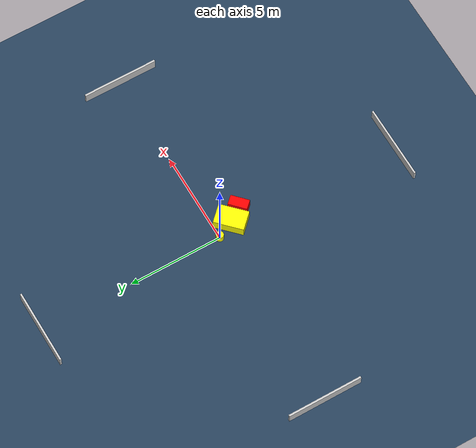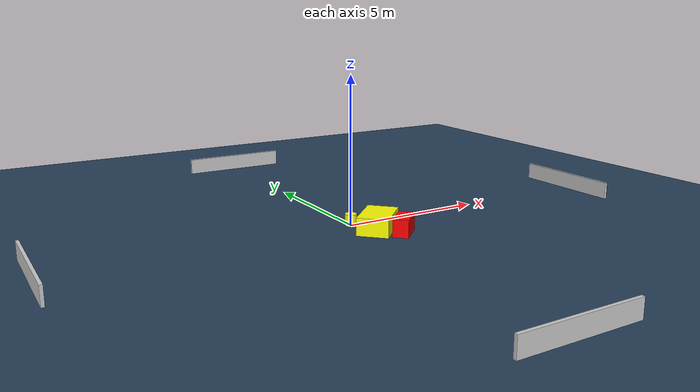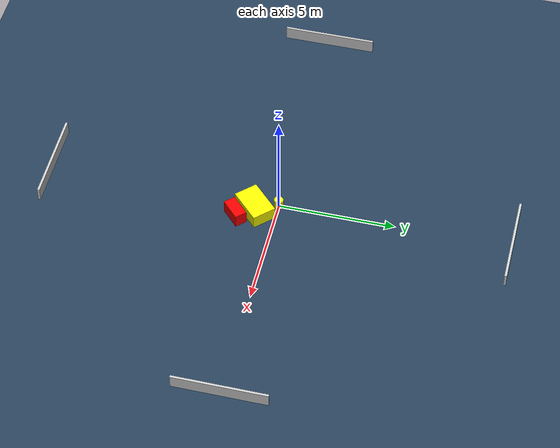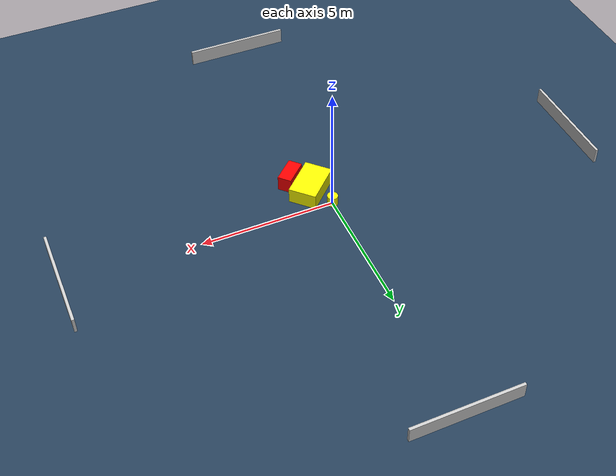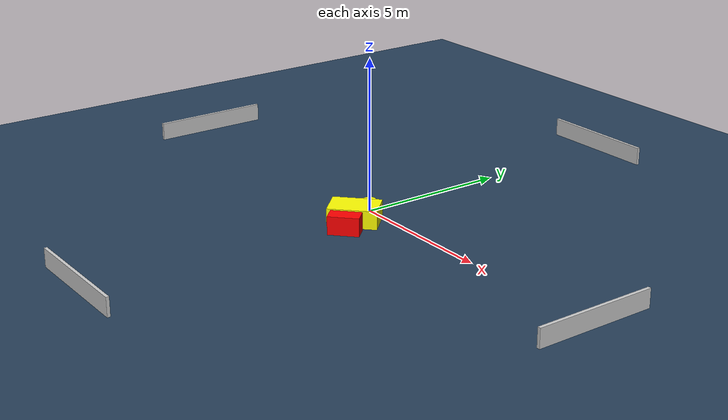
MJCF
<?xml version="1.0" ?>
<mujoco model="generated_environment">
  <option timestep="0.01" integrator="RK4" cone="elliptic"/>
  <default>
    <geom density="1"/>
  </default>
  <asset>
    <texture builtin="gradient" height="3072" name="skybox" rgb1="0.3 0.5 0.7" rgb2="0 0 0" type="skybox" width="512"/>
    <texture builtin="checker" height="300" name="groundplane" rgb1="0.2 0.3 0.4" rgb2="0.1 0.2 0.3" type="2d" width="300"/>
    <material name="groundplane" reflectance="0.2" texrepeat="5 5" texture="groundplane"/>
  </asset>
  <worldbody>
    <light dir="0 0 -1" directional="true" pos="0 0 1.5"/>
    <geom condim="3" friction="0.5 0.005 0.001" material="groundplane" name="floor" pos="0 0 0" size="0 0 0.05" type="plane"/>
    <body name="walls">
      <geom name="wall_1" condim="4" pos="-10.0 0.0 0.3" rgba="0.800000011920929 0.800000011920929 0.800000011920929 1.0" size="0.05 2.0 0.3" type="box"/>
      <geom name="wall_2" condim="4" pos="10.0 0.0 0.3" rgba="0.800000011920929 0.800000011920929 0.800000011920929 1.0" size="0.05 2.0 0.3" type="box"/>
      <geom name="wall_3" condim="4" pos="0.0 -10.0 0.3" rgba="0.800000011920929 0.800000011920929 0.800000011920929 1.0" size="2.0 0.05 0.3" type="box"/>
      <geom name="wall_4" condim="4" pos="0.0 10.0 0.3" rgba="0.800000011920929 0.800000011920929 0.800000011920929 1.0" size="2.0 0.05 0.3" type="box"/>
    </body>
    <body name="robot">
      <joint name="joint_x" type="slide" pos="0 0 0" axis="1 0 0"/>
      <joint name="joint_y" type="slide" pos="0 0 0" axis="0 1 0"/>
      <geom name="robot" type="cylinder" pos="0.0 0.0 0.2" size="0.2 0.2 0.0" mass="5.0" friction="1.0 0.005 0.0001" condim="4" rgba="1.0 1.0 0.0 1.0"/>
    </body>
    <body name="obstacle_1_movable">
      <geom name="obstacle_1_movable" condim="4" pos="0.4766571512285374 -0.9188762053080186 0.3" euler="0 0 314.2011054006002" friction="0.0 0.005 0.001" rgba="1.0 1.0 0.0 1.0" size="0.52289233021128 0.7886012726907603 0.3" type="box" mass="0.1"/>
      <joint type="free"/>
    </body>
    <body name="obstacle_2_static">
      <geom name="obstacle_2_static" condim="4" pos="0.9882884165618487 -1.6519305040761825 0.3" euler="0 0 313.53552986383164" friction="0.0 0.005 0.001" rgba="1.0 0.0 0.0 1.0" size="0.26176915901641495 0.4995281536691805 0.3" type="box"/>
    </body>
  </worldbody>
  <actuator>
    <motor name="actuator_x" joint="joint_x" gear="1" ctrlrange="-1 1"/>
    <motor name="actuator_y" joint="joint_y" gear="1" ctrlrange="-1 1"/>
  </actuator>
</mujoco>
